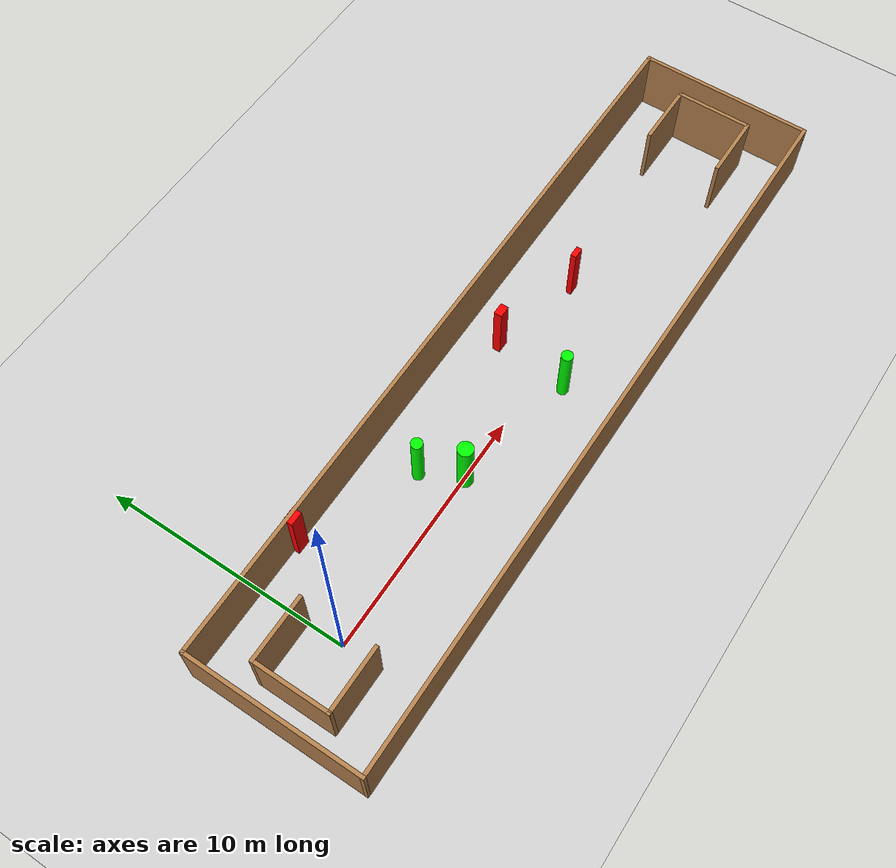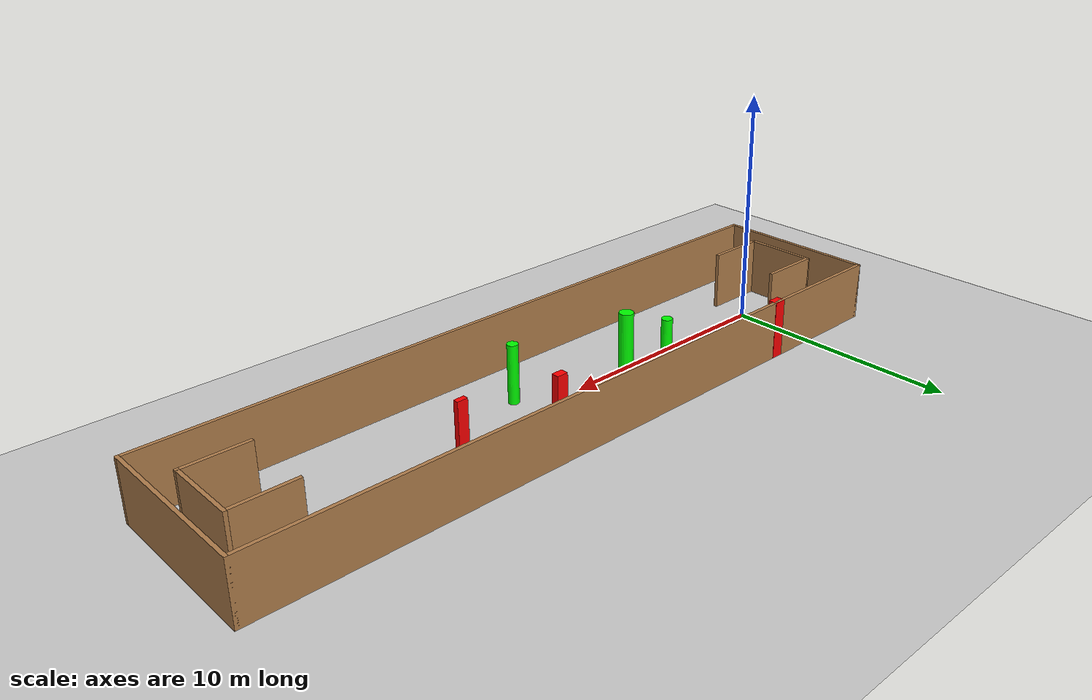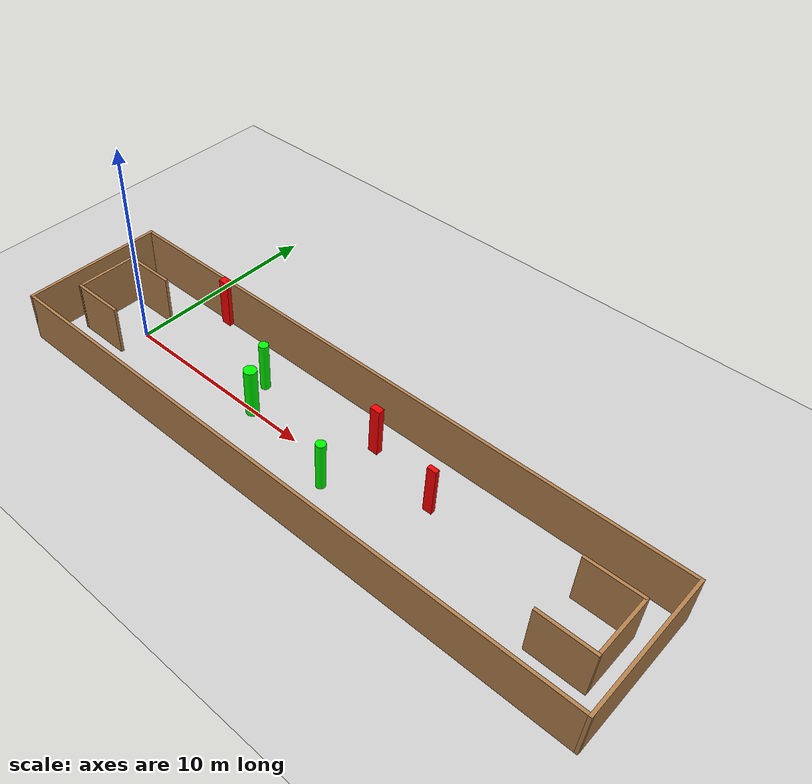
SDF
<sdf version="1.7">
 <world name="default">
  <light name="sun" type="directional">
   <pose>0 0 10 0 -0 0</pose>
   <diffuse>0.8 0.8 0.8 1</diffuse>
   <specular>0.2 0.2 0.2 1</specular>
   <attenuation>
    <range>1000</range>
    <constant>0.9</constant>
    <linear>0.01</linear>
    <quadratic>0.001</quadratic>
   </attenuation>
   <direction>-0.5 0.1 -0.9</direction>
   <spot><inner_angle>0</inner_angle><outer_angle>0</outer_angle><falloff>0</falloff></spot>
  </light>
  <model name="ground_plane">
   <static>1</static>
   <link name="link">
    <collision name="collision">
     <geometry><plane><normal>0 0 1</normal><size>100 100</size></plane></geometry>
     <surface>
      <contact><collide_bitmask>65535</collide_bitmask></contact>
      <friction><ode><mu>100</mu><mu2>50</mu2></ode></friction>
     </surface>
    </collision>
    <visual name="visual">
     <cast_shadows>0</cast_shadows>
     <geometry><plane><normal>0 0 1</normal><size>100 100</size></plane></geometry>
     <material>
      <script><uri>file://media/materials/scripts/gazebo.material</uri><name>Gazebo/Grey</name></script>
     </material>
    </visual>
   </link>
  </model>
  <gravity>0 0 -9.8</gravity>
  <magnetic_field>6e-06 2.3e-05 -4.2e-05</magnetic_field>
  <atmosphere type="adiabatic"/>
  <physics type="ode">
   <max_step_size>0.001</max_step_size>
   <real_time_factor>1</real_time_factor>
   <real_time_update_rate>1000</real_time_update_rate>
  </physics>
  <scene><ambient>0.4 0.4 0.4 1</ambient><background>0.7 0.7 0.7 1</background><shadows>1</shadows></scene>
  <spherical_coordinates>
   <surface_model>EARTH_WGS84</surface_model>
   <latitude_deg>0</latitude_deg>
   <longitude_deg>0</longitude_deg>
   <elevation>0</elevation>
   <heading_deg>0</heading_deg>
  </spherical_coordinates>
  <model name="my_base_walls">
   <link name="Wall_0">
    <collision name="Wall_0_Collision">
     <geometry><box><size>7.15 0.15 2.5</size></box></geometry>
     <pose>0 0 1.25 0 -0 0</pose>
    </collision>
    <visual name="Wall_0_Visual">
     <pose>0 0 1.25 0 -0 0</pose>
     <geometry><box><size>7.15 0.15 2.5</size></box></geometry>
     <material>
      <script><uri>file://media/materials/scripts/gazebo.material</uri><name>Gazebo/Wood</name></script>
      <ambient>1 1 1 1</ambient>
     </material>
     <meta><layer>0</layer></meta>
    </visual>
    <pose>-15 0 0 0 -0 1.5708</pose>
   </link>
   <link name="Wall_10">
    <collision name="Wall_10_Collision">
     <geometry><box><size>2.65 0.15 2.5</size></box></geometry>
     <pose>0 0 1.25 0 -0 0</pose>
    </collision>
    <visual name="Wall_10_Visual">
     <pose>0 0 1.25 0 -0 0</pose>
     <geometry><box><size>2.65 0.15 2.5</size></box></geometry>
     <material>
      <script><uri>file://media/materials/scripts/gazebo.material</uri><name>Gazebo/Wood</name></script>
      <ambient>1 1 1 1</ambient>
     </material>
     <meta><layer>0</layer></meta>
    </visual>
    <pose>-12.75 -1.5 0 0 -0 0</pose>
   </link>
   <link name="Wall_12">
    <collision name="Wall_12_Collision">
     <geometry><box><size>2.65 0.15 2.5</size></box></geometry>
     <pose>0 0 1.25 0 -0 0</pose>
    </collision>
    <visual name="Wall_12_Visual">
     <pose>0 0 1.25 0 -0 0</pose>
     <geometry><box><size>2.65 0.15 2.5</size></box></geometry>
     <material>
      <script><uri>file://media/materials/scripts/gazebo.material</uri><name>Gazebo/Wood</name></script>
      <ambient>1 1 1 1</ambient>
     </material>
     <meta><layer>0</layer></meta>
    </visual>
    <pose>-12.75 1.5 0 0 -0 0</pose>
   </link>
   <link name="Wall_14">
    <collision name="Wall_14_Collision">
     <geometry><box><size>3.15 0.15 2.5</size></box></geometry>
     <pose>0 0 1.25 0 -0 0</pose>
    </collision>
    <visual name="Wall_14_Visual">
     <pose>0 0 1.25 0 -0 0</pose>
     <geometry><box><size>3.15 0.15 2.5</size></box></geometry>
     <material>
      <script><uri>file://media/materials/scripts/gazebo.material</uri><name>Gazebo/Wood</name></script>
      <ambient>1 1 1 1</ambient>
     </material>
     <meta><layer>0</layer></meta>
    </visual>
    <pose>14 0 0 0 -0 -1.5708</pose>
   </link>
   <link name="Wall_15">
    <collision name="Wall_15_Collision">
     <geometry><box><size>2.65 0.15 2.5</size></box></geometry>
     <pose>0 0 1.25 0 -0 0</pose>
    </collision>
    <visual name="Wall_15_Visual">
     <pose>0 0 1.25 0 -0 0</pose>
     <geometry><box><size>2.65 0.15 2.5</size></box></geometry>
     <material>
      <script><uri>file://media/materials/scripts/gazebo.material</uri><name>Gazebo/Wood</name></script>
      <ambient>1 1 1 1</ambient>
     </material>
     <meta><layer>0</layer></meta>
    </visual>
    <pose>12.75 -1.5 0 0 -0 3.14159</pose>
   </link>
   <link name="Wall_17">
    <collision name="Wall_17_Collision">
     <geometry><box><size>2.65 0.15 2.5</size></box></geometry>
     <pose>0 0 1.25 0 -0 0</pose>
    </collision>
    <visual name="Wall_17_Visual">
     <pose>0 0 1.25 0 -0 0</pose>
     <geometry><box><size>2.65 0.15 2.5</size></box></geometry>
     <material>
      <script><uri>file://media/materials/scripts/gazebo.material</uri><name>Gazebo/Wood</name></script>
      <ambient>1 1 1 1</ambient>
     </material>
     <meta><layer>0</layer></meta>
    </visual>
    <pose>12.75 1.5 0 0 -0 3.14159</pose>
   </link>
   <link name="Wall_2">
    <collision name="Wall_2_Collision">
     <geometry><box><size>30.15 0.15 2.5</size></box></geometry>
     <pose>0 0 1.25 0 -0 0</pose>
    </collision>
    <visual name="Wall_2_Visual">
     <pose>0 0 1.25 0 -0 0</pose>
     <geometry><box><size>30.15 0.15 2.5</size></box></geometry>
     <material>
      <script><uri>file://media/materials/scripts/gazebo.material</uri><name>Gazebo/Wood</name></script>
      <ambient>1 1 1 1</ambient>
     </material>
     <meta><layer>0</layer></meta>
    </visual>
    <pose>-0 -3.5 0 0 -0 0</pose>
   </link>
   <link name="Wall_4">
    <collision name="Wall_4_Collision">
     <geometry><box><size>30.15 0.15 2.5</size></box></geometry>
     <pose>0 0 1.25 0 -0 0</pose>
    </collision>
    <visual name="Wall_4_Visual">
     <pose>0 0 1.25 0 -0 0</pose>
     <geometry><box><size>30.15 0.15 2.5</size></box></geometry>
     <material>
      <script><uri>file://media/materials/scripts/gazebo.material</uri><name>Gazebo/Wood</name></script>
      <ambient>1 1 1 1</ambient>
     </material>
     <meta><layer>0</layer></meta>
    </visual>
    <pose>-0 3.5 0 0 -0 0</pose>
   </link>
   <link name="Wall_6">
    <collision name="Wall_6_Collision">
     <geometry><box><size>7.15 0.15 2.5</size></box></geometry>
     <pose>0 0 1.25 0 -0 0</pose>
    </collision>
    <visual name="Wall_6_Visual">
     <pose>0 0 1.25 0 -0 0</pose>
     <geometry><box><size>7.15 0.15 2.5</size></box></geometry>
     <material>
      <script><uri>file://media/materials/scripts/gazebo.material</uri><name>Gazebo/Wood</name></script>
      <ambient>1 1 1 1</ambient>
     </material>
     <meta><layer>0</layer></meta>
    </visual>
    <pose>15 0 0 0 -0 -1.5708</pose>
   </link>
   <link name="Wall_9">
    <collision name="Wall_9_Collision">
     <geometry><box><size>3.15 0.15 2.5</size></box></geometry>
     <pose>0 0 1.25 0 -0 0</pose>
    </collision>
    <visual name="Wall_9_Visual">
     <pose>0 0 1.25 0 -0 0</pose>
     <geometry><box><size>3.15 0.15 2.5</size></box></geometry>
     <material>
      <script><uri>file://media/materials/scripts/gazebo.material</uri><name>Gazebo/Wood</name></script>
      <ambient>1 1 1 1</ambient>
     </material>
     <meta><layer>0</layer></meta>
    </visual>
    <pose>-14 0 0 0 -0 -1.5708</pose>
   </link>
   <static>1</static>
   <pose>11.5 0 0 0 -0 0</pose>
  </model>
  <model name="cylinder1">
   <static>1</static>
   <link name="link">
    <inertial>
     <mass>1</mass>
     <inertia><ixx>0.5</ixx><ixy>0</ixy><ixz>0</ixz><iyy>0.5</iyy><iyz>0</iyz><izz>1</izz></inertia>
    </inertial>
    <collision name="collision">
     <geometry><cylinder><radius>0.30679917787239447</radius><length>2.5</length></cylinder></geometry>
    </collision>
    <visual name="visual">
     <geometry><cylinder><radius>0.30679917787239447</radius><length>2.5</length></cylinder></geometry>
     <material>
      <ambient>0 1 0 1</ambient>
      <diffuse>0 1 0 1</diffuse>
      <specular>0.1 0.1 0.1 1</specular>
      <emissive>0 0 0 0</emissive>
     </material>
    </visual>
   </link>
   <pose>7.378551139738873 -0.030692072048348784 1.25 0 0 0</pose>
  </model>
  <model name="cylinder2">
   <static>1</static>
   <link name="link">
    <inertial>
     <mass>1</mass>
     <inertia><ixx>0.5</ixx><ixy>0</ixy><ixz>0</ixz><iyy>0.5</iyy><iyz>0</iyz><izz>1</izz></inertia>
    </inertial>
    <collision name="collision">
     <geometry><cylinder><radius>0.22582215158168084</radius><length>2.5</length></cylinder></geometry>
    </collision>
    <visual name="visual">
     <geometry><cylinder><radius>0.22582215158168084</radius><length>2.5</length></cylinder></geometry>
     <material>
      <ambient>0 1 0 1</ambient>
      <diffuse>0 1 0 1</diffuse>
      <specular>0.1 0.1 0.1 1</specular>
      <emissive>0 0 0 0</emissive>
     </material>
    </visual>
   </link>
   <pose>12.47876724859162 -1.022389729719288 1.25 0 0 0</pose>
  </model>
  <model name="cylinder3">
   <static>1</static>
   <link name="link">
    <inertial>
     <mass>1</mass>
     <inertia><ixx>0.5</ixx><ixy>0</ixy><ixz>0</ixz><iyy>0.5</iyy><iyz>0</iyz><izz>1</izz></inertia>
    </inertial>
    <collision name="collision">
     <geometry><cylinder><radius>0.22839864262702714</radius><length>2.5</length></cylinder></geometry>
    </collision>
    <visual name="visual">
     <geometry><cylinder><radius>0.22839864262702714</radius><length>2.5</length></cylinder></geometry>
     <material>
      <ambient>0 1 0 1</ambient>
      <diffuse>0 1 0 1</diffuse>
      <specular>0.1 0.1 0.1 1</specular>
      <emissive>0 0 0 0</emissive>
     </material>
    </visual>
   </link>
   <pose>6.632830756374128 1.4800080748645383 1.25 0 0 0</pose>
  </model>
  <model name="box1">
   <static>1</static>
   <link name="link">
    <inertial>
     <mass>1</mass>
     <inertia><ixx>0.083</ixx><ixy>0</ixy><ixz>0</ixz><iyy>0.083</iyy><iyz>0</iyz><izz>0.083</izz></inertia>
    </inertial>
    <collision name="collision">
     <geometry><box><size>0.5385539515700659 0.3721718076186661 2.5</size></box></geometry>
    </collision>
    <visual name="visual">
     <geometry><box><size>0.5385539515700659 0.3721718076186661 2.5</size></box></geometry>
     <material>
      <ambient>1 0 0 1</ambient>
      <diffuse>1 0 0 1</diffuse>
      <specular>0.1 0.1 0.1 1</specular>
      <emissive>0 0 0 0</emissive>
     </material>
    </visual>
    <sensor name="my_contact" type="contact">
     <contact><collision>box_collision</collision><topic>__default_topic__</topic></contact>
    </sensor>
   </link>
   <pose>2.1141831318965263 3.398098876399371 1.25 0 0 0</pose>
  </model>
  <model name="box2">
   <static>1</static>
   <link name="link">
    <inertial>
     <mass>1</mass>
     <inertia><ixx>0.083</ixx><ixy>0</ixy><ixz>0</ixz><iyy>0.083</iyy><iyz>0</iyz><izz>0.083</izz></inertia>
    </inertial>
    <collision name="collision">
     <geometry><box><size>0.4489378640743312 0.22140318265044145 2.5</size></box></geometry>
    </collision>
    <visual name="visual">
     <geometry><box><size>0.4489378640743312 0.22140318265044145 2.5</size></box></geometry>
     <material>
      <ambient>1 0 0 1</ambient>
      <diffuse>1 0 0 1</diffuse>
      <specular>0.1 0.1 0.1 1</specular>
      <emissive>0 0 0 0</emissive>
     </material>
    </visual>
    <sensor name="my_contact" type="contact">
     <contact><collision>box_collision</collision><topic>__default_topic__</topic></contact>
    </sensor>
   </link>
   <pose>16.50994251633703 1.01542094395651 1.25 0 0 0</pose>
  </model>
  <model name="box3">
   <static>1</static>
   <link name="link">
    <inertial>
     <mass>1</mass>
     <inertia><ixx>0.083</ixx><ixy>0</ixy><ixz>0</ixz><iyy>0.083</iyy><iyz>0</iyz><izz>0.083</izz></inertia>
    </inertial>
    <collision name="collision">
     <geometry><box><size>0.4793165077734804 0.32088731307358903 2.5</size></box></geometry>
    </collision>
    <visual name="visual">
     <geometry><box><size>0.4793165077734804 0.32088731307358903 2.5</size></box></geometry>
     <material>
      <ambient>1 0 0 1</ambient>
      <diffuse>1 0 0 1</diffuse>
      <specular>0.1 0.1 0.1 1</specular>
      <emissive>0 0 0 0</emissive>
     </material>
    </visual>
    <sensor name="my_contact" type="contact">
     <contact><collision>box_collision</collision><topic>__default_topic__</topic></contact>
    </sensor>
   </link>
   <pose>12.800934001167382 1.9714793671761823 1.25 0 0 0</pose>
  </model>
 </world>
</sdf>
